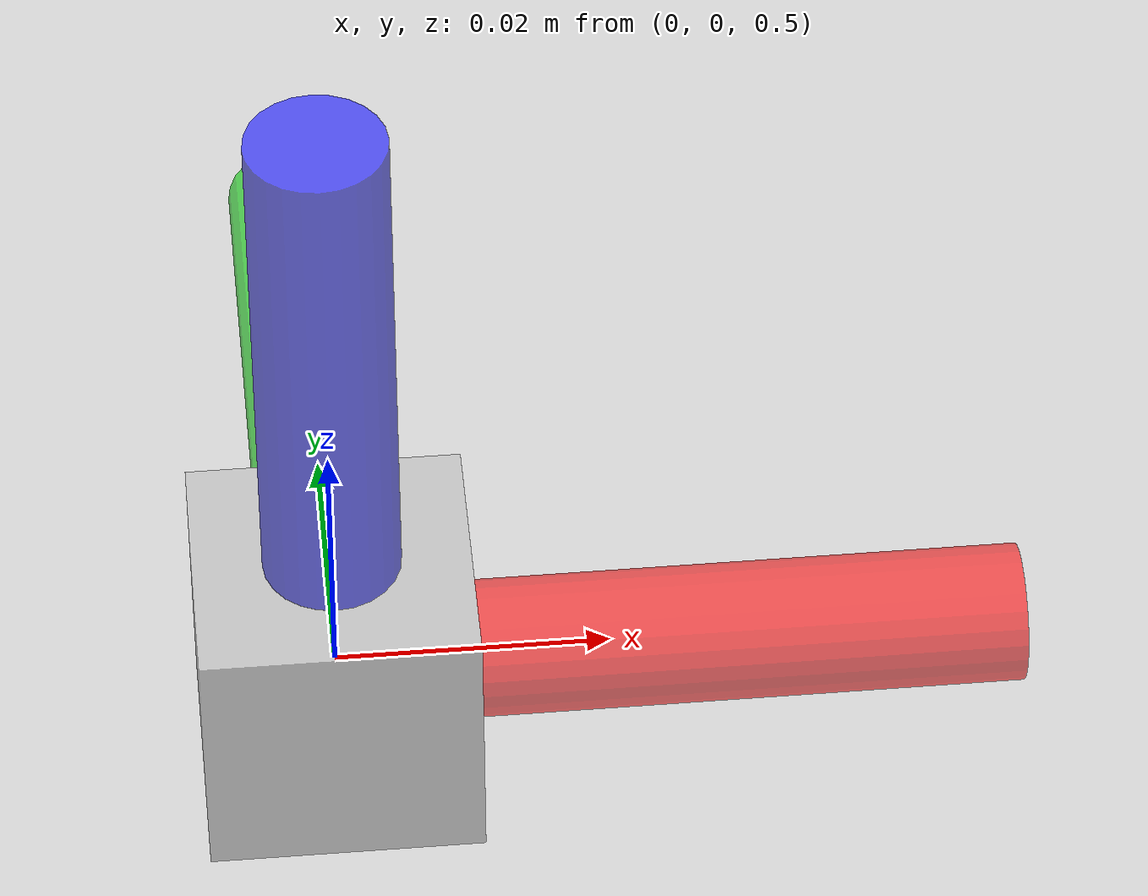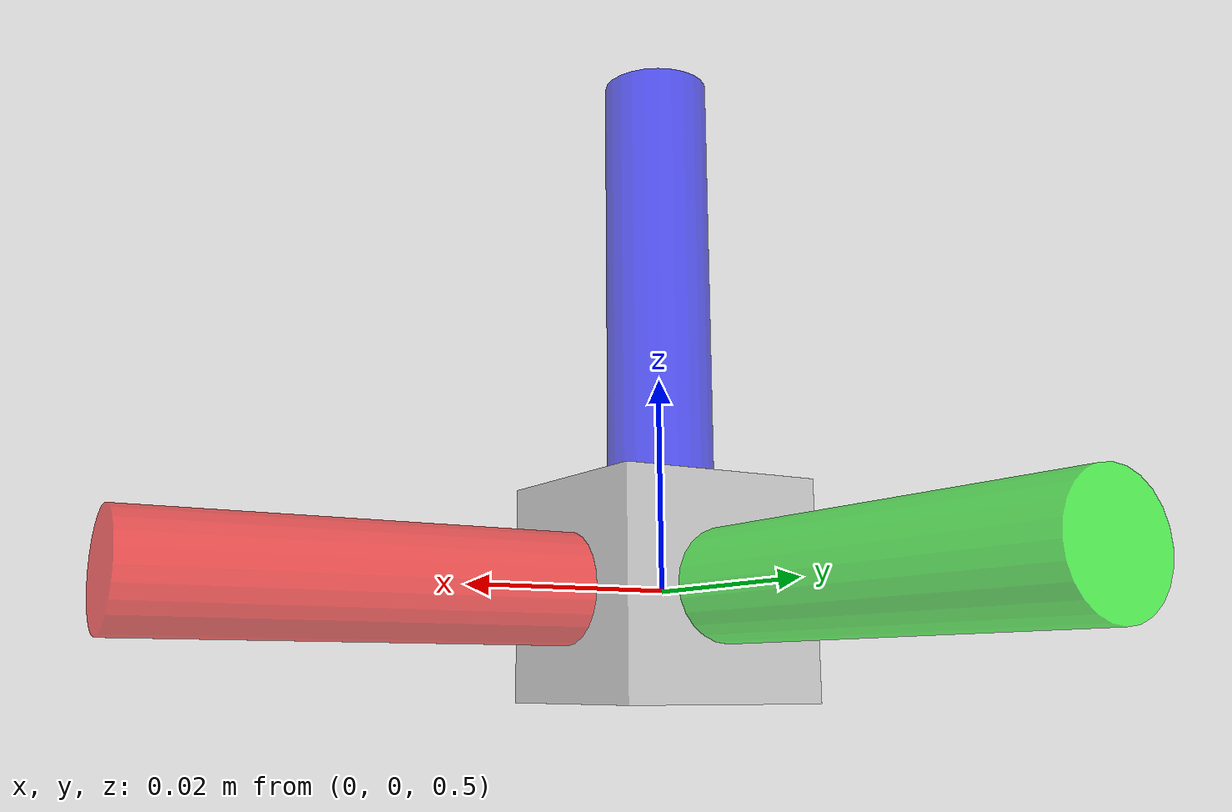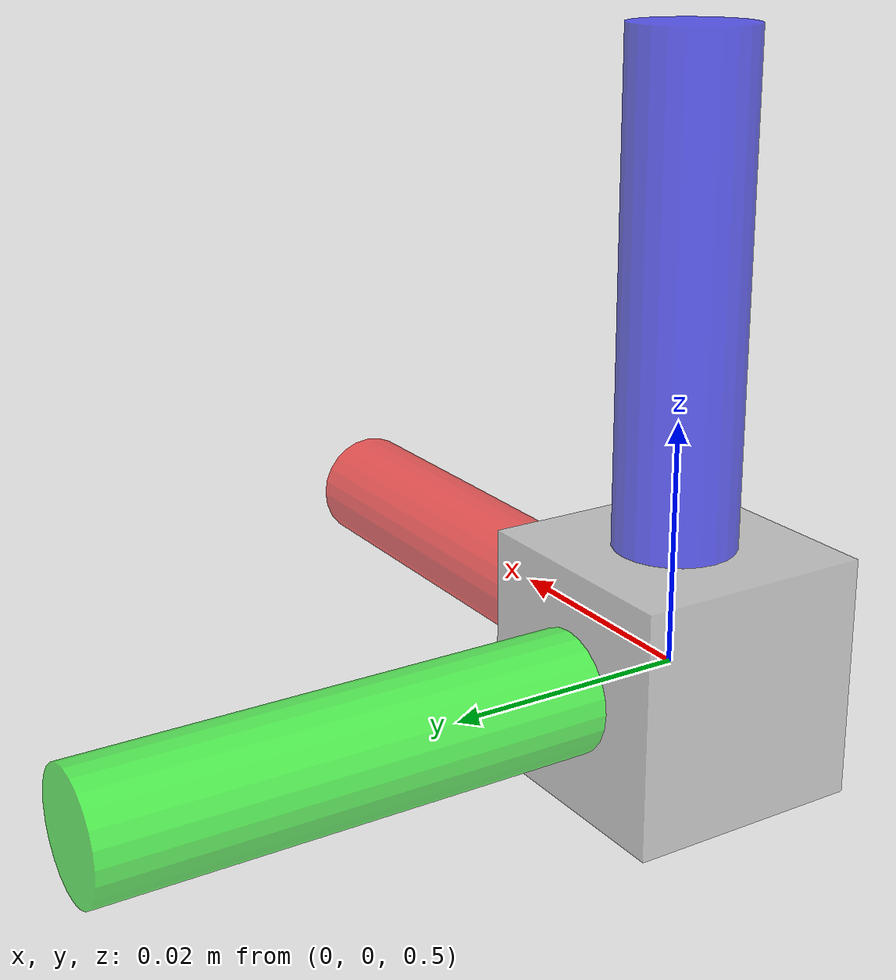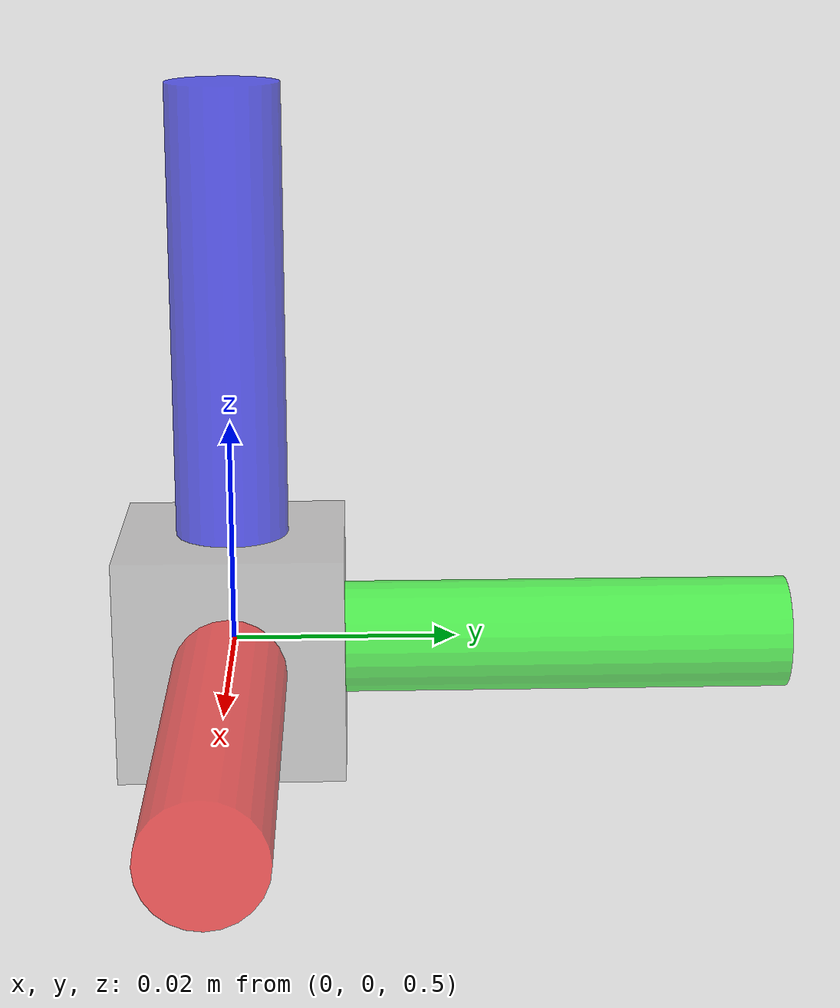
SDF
<?xml version='1.0'?>
<sdf version="1.4">
<model name="task_frame">
    <pose>0 0 0.5 0 0 0</pose>
    <static>false</static>
    <link name="origin">
        <gravity>false</gravity>
        <visual name="visual">
            <transparency>0.4</transparency>
            <geometry>
                  <box>
                      <size>0.02 0.02 0.02</size>
                  </box>
            </geometry>
        </visual>
    </link>
    <link name="x_axis">
        <gravity>false</gravity>
        <visual name="visual">
            <pose>0.03 0.0 0.0 0.0 1.57 0.0</pose>
            <transparency>0.4</transparency>
            <geometry>
                  <cylinder>
                      <length>0.04</length>
                      <radius>0.005</radius>
                  </cylinder>
            </geometry>
            <material>
                <ambient>1 0 0 1</ambient>
                <diffuse>1 0 0 1</diffuse>
                <specular>0.1 0.1 0.1 1</specular>
                <emissive>0 0 0 0</emissive>
            </material>
        </visual>
    </link>
    <link name="y_axis">
        <gravity>false</gravity>
        <visual name="visual">
            <pose>0.0 0.03 0.0 1.57 0.0 0.0</pose>
            <transparency>0.4</transparency>
            <geometry>
                  <cylinder>
                      <length>0.04</length>
                      <radius>0.005</radius>
                  </cylinder>
            </geometry>
            <material>
                <ambient>0 1 0 1</ambient>
                <diffuse>0 1 0 1</diffuse>
                <specular>0.1 0.1 0.1 1</specular>
                <emissive>0 0 0 0</emissive>
            </material>
        </visual>
    </link>
    <link name="z_axis">
        <gravity>false</gravity>
        <visual name="visual">
            <pose>0.0 0.0 0.03 0.0 0.0 0.0</pose>
            <transparency>0.4</transparency>
            <geometry>
                  <cylinder>
                      <length>0.04</length>
                      <radius>0.005</radius>
                  </cylinder>
            </geometry>
            <material>
                <ambient>0 0 1 1</ambient>
                <diffuse>0 0 1 1</diffuse>
                <specular>0.1 0.1 0.1 1</specular>
                <emissive>0 0 0 0</emissive>
            </material>
        </visual>
    </link>
    <plugin name="yarp_model_move" filename="libyarp_model_move.so"/>
</model>
</sdf>
